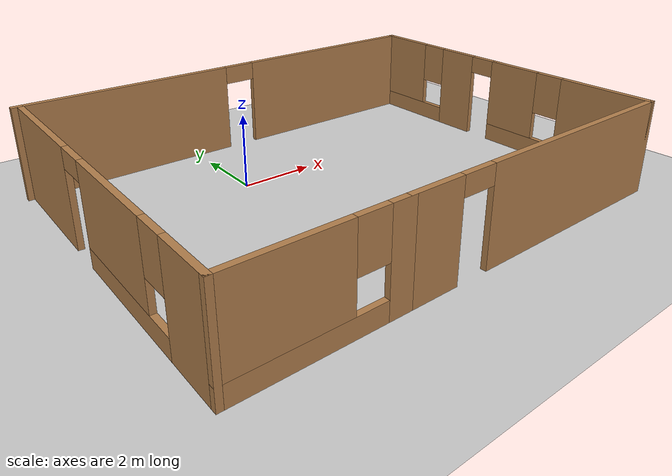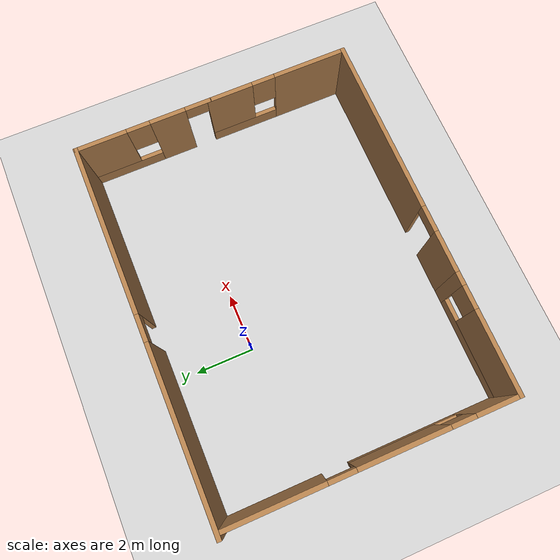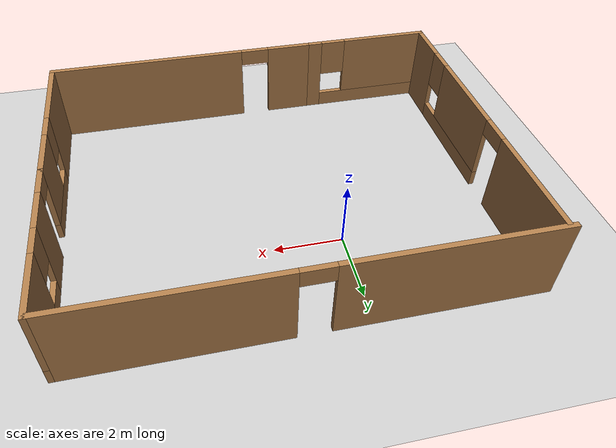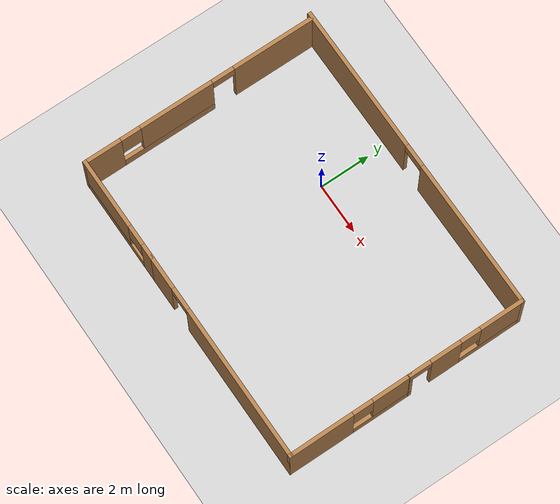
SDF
<sdf version="1.7">
 <world name="default">
  <light name="sun" type="directional">
   <pose>0 0 10 0 -0 0</pose>
   <diffuse>0.8 0.8 0.8 1</diffuse>
   <specular>0.2 0.2 0.2 1</specular>
   <attenuation>
    <range>1000</range>
    <constant>0.9</constant>
    <linear>0.01</linear>
    <quadratic>0.001</quadratic>
   </attenuation>
   <direction>-0.5 0.1 -0.9</direction>
   <spot><inner_angle>0</inner_angle><outer_angle>0</outer_angle><falloff>0</falloff></spot>
  </light>
  <model name="ground_plane">
   <static>1</static>
   <link name="link">
    <collision name="collision">
     <geometry><plane><normal>0 0 1</normal><size>100 100</size></plane></geometry>
     <surface>
      <contact><collide_bitmask>65535</collide_bitmask></contact>
      <friction><ode><mu>100</mu><mu2>50</mu2></ode></friction>
     </surface>
    </collision>
    <visual name="visual">
     <cast_shadows>0</cast_shadows>
     <geometry><plane><normal>0 0 1</normal><size>100 100</size></plane></geometry>
     <material>
      <script><uri>file://media/materials/scripts/gazebo.material</uri><name>Gazebo/Grey</name></script>
     </material>
    </visual>
   </link>
  </model>
  <gravity>0 0 -9.8</gravity>
  <magnetic_field>6e-06 2.3e-05 -4.2e-05</magnetic_field>
  <atmosphere type="adiabatic"/>
  <physics type="ode">
   <max_step_size>0.001</max_step_size>
   <real_time_factor>1</real_time_factor>
   <real_time_update_rate>1000</real_time_update_rate>
  </physics>
  <scene><ambient>0.4 0.4 0.4 1</ambient><background>0.7 0.7 0.7 1</background><shadows>1</shadows></scene>
  <spherical_coordinates>
   <surface_model>EARTH_WGS84</surface_model>
   <latitude_deg>0</latitude_deg>
   <longitude_deg>0</longitude_deg>
   <elevation>0</elevation>
   <heading_deg>0</heading_deg>
  </spherical_coordinates>
  <model name="room.world">
   <pose>1.53871 -1.93258 0 0 -0 0</pose>
   <link name="Wall_1">
    <pose>2.125 -4.725 0 0 -0 0</pose>
    <visual name="Wall_1_Visual_0">
     <pose>-3.54181 0 1.25 0 -0 0</pose>
     <geometry><box><size>1.41639 0.15 2.5</size></box></geometry>
     <material>
      <script><uri>file://media/materials/scripts/gazebo.material</uri><name>Gazebo/Wood</name></script>
      <ambient>1 1 1 1</ambient>
     </material>
     <meta><layer>0</layer></meta>
    </visual>
    <collision name="Wall_1_Collision_0">
     <geometry><box><size>1.41639 0.15 2.5</size></box></geometry>
     <pose>-3.54181 0 1.25 0 -0 0</pose>
    </collision>
    <visual name="Wall_1_Visual_1">
     <pose>1.15819 0 1.25 0 -0 0</pose>
     <geometry><box><size>6.18361 0.15 2.5</size></box></geometry>
     <material>
      <script><uri>file://media/materials/scripts/gazebo.material</uri><name>Gazebo/Wood</name></script>
      <ambient>1 1 1 1</ambient>
     </material>
     <meta><layer>0</layer></meta>
    </visual>
    <collision name="Wall_1_Collision_1">
     <geometry><box><size>6.18361 0.15 2.5</size></box></geometry>
     <pose>1.15819 0 1.25 0 -0 0</pose>
    </collision>
    <visual name="Wall_1_Visual_2">
     <pose>-2.38361 0 2.25 0 -0 0</pose>
     <geometry><box><size>0.9 0.15 0.5</size></box></geometry>
     <material>
      <script><uri>file://media/materials/scripts/gazebo.material</uri><name>Gazebo/Wood</name></script>
      <ambient>1 1 1 1</ambient>
     </material>
     <meta><layer>0</layer></meta>
    </visual>
    <collision name="Wall_1_Collision_2">
     <geometry><box><size>0.9 0.15 0.5</size></box></geometry>
     <pose>-2.38361 0 2.25 0 -0 0</pose>
    </collision>
   </link>
   <link name="Wall_15">
    <pose>6.3 2.425 0 0 -0 1.5708</pose>
    <visual name="Wall_15_Visual_0">
     <pose>-2.36607 0 1.25 0 -0 0</pose>
     <geometry><box><size>0.017857 0.15 2.5</size></box></geometry>
     <material>
      <script><uri>file://media/materials/scripts/gazebo.material</uri><name>Gazebo/Wood</name></script>
      <ambient>1 1 1 1</ambient>
     </material>
     <meta><layer>0</layer></meta>
    </visual>
    <collision name="Wall_15_Collision_0">
     <geometry><box><size>0.017857 0.15 2.5</size></box></geometry>
     <pose>-2.36607 0 1.25 0 -0 0</pose>
    </collision>
    <visual name="Wall_15_Visual_1">
     <pose>-0.842075 0 1.25 0 -0 0</pose>
     <geometry><box><size>1.23014 0.15 2.5</size></box></geometry>
     <material>
      <script><uri>file://media/materials/scripts/gazebo.material</uri><name>Gazebo/Wood</name></script>
      <ambient>1 1 1 1</ambient>
     </material>
     <meta><layer>0</layer></meta>
    </visual>
    <collision name="Wall_15_Collision_1">
     <geometry><box><size>1.23014 0.15 2.5</size></box></geometry>
     <pose>-0.842075 0 1.25 0 -0 0</pose>
    </collision>
    <visual name="Wall_15_Visual_2">
     <pose>1.074 0 0.25 0 -0 0</pose>
     <geometry><box><size>2.60201 0.15 0.5</size></box></geometry>
     <material>
      <script><uri>file://media/materials/scripts/gazebo.material</uri><name>Gazebo/Wood</name></script>
      <ambient>1 1 1 1</ambient>
     </material>
     <meta><layer>0</layer></meta>
    </visual>
    <collision name="Wall_15_Collision_2">
     <geometry><box><size>2.60201 0.15 0.5</size></box></geometry>
     <pose>1.074 0 0.25 0 -0 0</pose>
    </collision>
    <visual name="Wall_15_Visual_3">
     <pose>1.474 0 1.5 0 -0 0</pose>
     <geometry><box><size>1.80201 0.15 2</size></box></geometry>
     <material>
      <script><uri>file://media/materials/scripts/gazebo.material</uri><name>Gazebo/Wood</name></script>
      <ambient>1 1 1 1</ambient>
     </material>
     <meta><layer>0</layer></meta>
    </visual>
    <collision name="Wall_15_Collision_3">
     <geometry><box><size>1.80201 0.15 2</size></box></geometry>
     <pose>1.474 0 1.5 0 -0 0</pose>
    </collision>
    <visual name="Wall_15_Visual_4">
     <pose>0.172993 0 1.9 0 -0 0</pose>
     <geometry><box><size>0.8 0.15 1.2</size></box></geometry>
     <material>
      <script><uri>file://media/materials/scripts/gazebo.material</uri><name>Gazebo/Wood</name></script>
      <ambient>1 1 1 1</ambient>
     </material>
     <meta><layer>0</layer></meta>
    </visual>
    <collision name="Wall_15_Collision_4">
     <geometry><box><size>0.8 0.15 1.2</size></box></geometry>
     <pose>0.172993 0 1.9 0 -0 0</pose>
    </collision>
    <visual name="Wall_15_Visual_5">
     <pose>-1.90714 0 2.25 0 -0 0</pose>
     <geometry><box><size>0.9 0.15 0.5</size></box></geometry>
     <material>
      <script><uri>file://media/materials/scripts/gazebo.material</uri><name>Gazebo/Wood</name></script>
      <ambient>1 1 1 1</ambient>
     </material>
     <meta><layer>0</layer></meta>
    </visual>
    <collision name="Wall_15_Collision_5">
     <geometry><box><size>0.9 0.15 0.5</size></box></geometry>
     <pose>-1.90714 0 2.25 0 -0 0</pose>
    </collision>
   </link>
   <link name="Wall_16">
    <pose>-0 4.725 0 0 -0 3.14159</pose>
    <visual name="Wall_16_Visual_0">
     <pose>-3.42085 0 1.25 0 -0 0</pose>
     <geometry><box><size>5.9083 0.15 2.5</size></box></geometry>
     <material>
      <script><uri>file://media/materials/scripts/gazebo.material</uri><name>Gazebo/Wood</name></script>
      <ambient>1 1 1 1</ambient>
     </material>
     <meta><layer>0</layer></meta>
    </visual>
    <collision name="Wall_16_Collision_0">
     <geometry><box><size>5.9083 0.15 2.5</size></box></geometry>
     <pose>-3.42085 0 1.25 0 -0 0</pose>
    </collision>
    <visual name="Wall_16_Visual_1">
     <pose>3.40415 0 1.25 0 -0 0</pose>
     <geometry><box><size>5.9417 0.15 2.5</size></box></geometry>
     <material>
      <script><uri>file://media/materials/scripts/gazebo.material</uri><name>Gazebo/Wood</name></script>
      <ambient>1 1 1 1</ambient>
     </material>
     <meta><layer>0</layer></meta>
    </visual>
    <collision name="Wall_16_Collision_1">
     <geometry><box><size>5.9417 0.15 2.5</size></box></geometry>
     <pose>3.40415 0 1.25 0 -0 0</pose>
    </collision>
    <visual name="Wall_16_Visual_2">
     <pose>-0.016697 0 2.25 0 -0 0</pose>
     <geometry><box><size>0.9 0.15 0.5</size></box></geometry>
     <material>
      <script><uri>file://media/materials/scripts/gazebo.material</uri><name>Gazebo/Wood</name></script>
      <ambient>1 1 1 1</ambient>
     </material>
     <meta><layer>0</layer></meta>
    </visual>
    <collision name="Wall_16_Collision_2">
     <geometry><box><size>0.9 0.15 0.5</size></box></geometry>
     <pose>-0.016697 0 2.25 0 -0 0</pose>
    </collision>
   </link>
   <link name="Wall_19">
    <pose>-4.1 -4.725 0 0 -0 3.14159</pose>
    <visual name="Wall_19_Visual_0">
     <pose>-1.82193 0 1.25 0 -0 0</pose>
     <geometry><box><size>0.606145 0.15 2.5</size></box></geometry>
     <material>
      <script><uri>file://media/materials/scripts/gazebo.material</uri><name>Gazebo/Wood</name></script>
      <ambient>1 1 1 1</ambient>
     </material>
     <meta><layer>0</layer></meta>
    </visual>
    <collision name="Wall_19_Collision_0">
     <geometry><box><size>0.606145 0.15 2.5</size></box></geometry>
     <pose>-1.82193 0 1.25 0 -0 0</pose>
    </collision>
    <visual name="Wall_19_Visual_1">
     <pose>0.303073 0 0.25 0 -0 0</pose>
     <geometry><box><size>3.64385 0.15 0.5</size></box></geometry>
     <material>
      <script><uri>file://media/materials/scripts/gazebo.material</uri><name>Gazebo/Wood</name></script>
      <ambient>1 1 1 1</ambient>
     </material>
     <meta><layer>0</layer></meta>
    </visual>
    <collision name="Wall_19_Collision_1">
     <geometry><box><size>3.64385 0.15 0.5</size></box></geometry>
     <pose>0.303073 0 0.25 0 -0 0</pose>
    </collision>
    <visual name="Wall_19_Visual_2">
     <pose>0.703073 0 1.5 0 -0 0</pose>
     <geometry><box><size>2.84386 0.15 2</size></box></geometry>
     <material>
      <script><uri>file://media/materials/scripts/gazebo.material</uri><name>Gazebo/Wood</name></script>
      <ambient>1 1 1 1</ambient>
     </material>
     <meta><layer>0</layer></meta>
    </visual>
    <collision name="Wall_19_Collision_2">
     <geometry><box><size>2.84386 0.15 2</size></box></geometry>
     <pose>0.703073 0 1.5 0 -0 0</pose>
    </collision>
    <visual name="Wall_19_Visual_3">
     <pose>-1.11885 0 1.9 0 -0 0</pose>
     <geometry><box><size>0.8 0.15 1.2</size></box></geometry>
     <material>
      <script><uri>file://media/materials/scripts/gazebo.material</uri><name>Gazebo/Wood</name></script>
      <ambient>1 1 1 1</ambient>
     </material>
     <meta><layer>0</layer></meta>
    </visual>
    <collision name="Wall_19_Collision_3">
     <geometry><box><size>0.8 0.15 1.2</size></box></geometry>
     <pose>-1.11885 0 1.9 0 -0 0</pose>
    </collision>
   </link>
   <link name="Wall_2">
    <pose>6.3 -2.3 0 0 -0 1.5708</pose>
    <visual name="Wall_2_Visual_0">
     <pose>-1.2035 0 1.25 0 -0 0</pose>
     <geometry><box><size>2.593 0.15 2.5</size></box></geometry>
     <material>
      <script><uri>file://media/materials/scripts/gazebo.material</uri><name>Gazebo/Wood</name></script>
      <ambient>1 1 1 1</ambient>
     </material>
     <meta><layer>0</layer></meta>
    </visual>
    <collision name="Wall_2_Collision_0">
     <geometry><box><size>2.593 0.15 2.5</size></box></geometry>
     <pose>-1.2035 0 1.25 0 -0 0</pose>
    </collision>
    <visual name="Wall_2_Visual_1">
     <pose>1.2965 0 0.25 0 -0 0</pose>
     <geometry><box><size>2.407 0.15 0.5</size></box></geometry>
     <material>
      <script><uri>file://media/materials/scripts/gazebo.material</uri><name>Gazebo/Wood</name></script>
      <ambient>1 1 1 1</ambient>
     </material>
     <meta><layer>0</layer></meta>
    </visual>
    <collision name="Wall_2_Collision_1">
     <geometry><box><size>2.407 0.15 0.5</size></box></geometry>
     <pose>1.2965 0 0.25 0 -0 0</pose>
    </collision>
    <visual name="Wall_2_Visual_2">
     <pose>1.6965 0 1.5 0 -0 0</pose>
     <geometry><box><size>1.607 0.15 2</size></box></geometry>
     <material>
      <script><uri>file://media/materials/scripts/gazebo.material</uri><name>Gazebo/Wood</name></script>
      <ambient>1 1 1 1</ambient>
     </material>
     <meta><layer>0</layer></meta>
    </visual>
    <collision name="Wall_2_Collision_2">
     <geometry><box><size>1.607 0.15 2</size></box></geometry>
     <pose>1.6965 0 1.5 0 -0 0</pose>
    </collision>
    <visual name="Wall_2_Visual_3">
     <pose>0.493 0 1.9 0 -0 0</pose>
     <geometry><box><size>0.8 0.15 1.2</size></box></geometry>
     <material>
      <script><uri>file://media/materials/scripts/gazebo.material</uri><name>Gazebo/Wood</name></script>
      <ambient>1 1 1 1</ambient>
     </material>
     <meta><layer>0</layer></meta>
    </visual>
    <collision name="Wall_2_Collision_3">
     <geometry><box><size>0.8 0.15 1.2</size></box></geometry>
     <pose>0.493 0 1.9 0 -0 0</pose>
    </collision>
   </link>
   <link name="Wall_20">
    <pose>-6.15 -0.05 0 0 -0 1.5708</pose>
    <visual name="Wall_20_Visual_0">
     <pose>-3.98883 0 1.25 0 -0 0</pose>
     <geometry><box><size>1.52234 0.15 2.5</size></box></geometry>
     <material>
      <script><uri>file://media/materials/scripts/gazebo.material</uri><name>Gazebo/Wood</name></script>
      <ambient>1 1 1 1</ambient>
     </material>
     <meta><layer>0</layer></meta>
    </visual>
    <collision name="Wall_20_Collision_0">
     <geometry><box><size>1.52234 0.15 2.5</size></box></geometry>
     <pose>-3.98883 0 1.25 0 -0 0</pose>
    </collision>
    <visual name="Wall_20_Visual_1">
     <pose>3.09806 0 1.25 0 -0 0</pose>
     <geometry><box><size>3.30388 0.15 2.5</size></box></geometry>
     <material>
      <script><uri>file://media/materials/scripts/gazebo.material</uri><name>Gazebo/Wood</name></script>
      <ambient>1 1 1 1</ambient>
     </material>
     <meta><layer>0</layer></meta>
    </visual>
    <collision name="Wall_20_Collision_1">
     <geometry><box><size>3.30388 0.15 2.5</size></box></geometry>
     <pose>3.09806 0 1.25 0 -0 0</pose>
    </collision>
    <visual name="Wall_20_Visual_2">
     <pose>-1.34077 0 0.25 0 -0 0</pose>
     <geometry><box><size>3.77378 0.15 0.5</size></box></geometry>
     <material>
      <script><uri>file://media/materials/scripts/gazebo.material</uri><name>Gazebo/Wood</name></script>
      <ambient>1 1 1 1</ambient>
     </material>
     <meta><layer>0</layer></meta>
    </visual>
    <collision name="Wall_20_Collision_2">
     <geometry><box><size>3.77378 0.15 0.5</size></box></geometry>
     <pose>-1.34077 0 0.25 0 -0 0</pose>
    </collision>
    <visual name="Wall_20_Visual_3">
     <pose>-0.940769 0 1.5 0 -0 0</pose>
     <geometry><box><size>2.97378 0.15 2</size></box></geometry>
     <material>
      <script><uri>file://media/materials/scripts/gazebo.material</uri><name>Gazebo/Wood</name></script>
      <ambient>1 1 1 1</ambient>
     </material>
     <meta><layer>0</layer></meta>
    </visual>
    <collision name="Wall_20_Collision_3">
     <geometry><box><size>2.97378 0.15 2</size></box></geometry>
     <pose>-0.940769 0 1.5 0 -0 0</pose>
    </collision>
    <visual name="Wall_20_Visual_4">
     <pose>-2.82766 0 1.9 0 -0 0</pose>
     <geometry><box><size>0.8 0.15 1.2</size></box></geometry>
     <material>
      <script><uri>file://media/materials/scripts/gazebo.material</uri><name>Gazebo/Wood</name></script>
      <ambient>1 1 1 1</ambient>
     </material>
     <meta><layer>0</layer></meta>
    </visual>
    <collision name="Wall_20_Collision_4">
     <geometry><box><size>0.8 0.15 1.2</size></box></geometry>
     <pose>-2.82766 0 1.9 0 -0 0</pose>
    </collision>
    <visual name="Wall_20_Visual_5">
     <pose>0.99612 0 2.25 0 -0 0</pose>
     <geometry><box><size>0.9 0.15 0.5</size></box></geometry>
     <material>
      <script><uri>file://media/materials/scripts/gazebo.material</uri><name>Gazebo/Wood</name></script>
      <ambient>1 1 1 1</ambient>
     </material>
     <meta><layer>0</layer></meta>
    </visual>
    <collision name="Wall_20_Collision_5">
     <geometry><box><size>0.9 0.15 0.5</size></box></geometry>
     <pose>0.99612 0 2.25 0 -0 0</pose>
    </collision>
   </link>
   <static>1</static>
  </model>
 </world>
</sdf>
